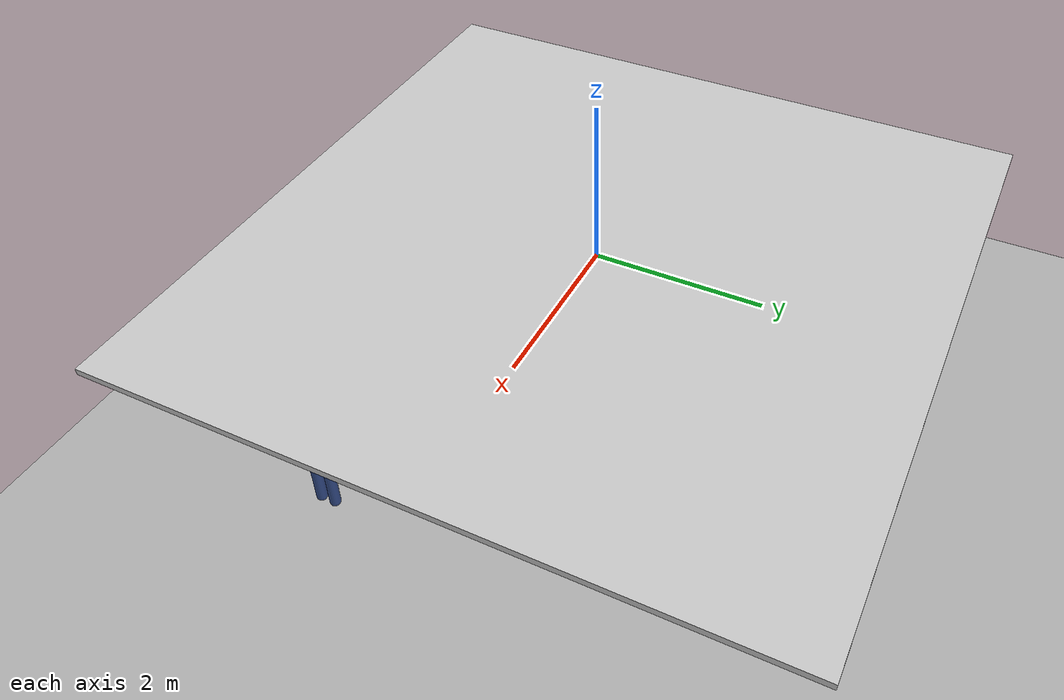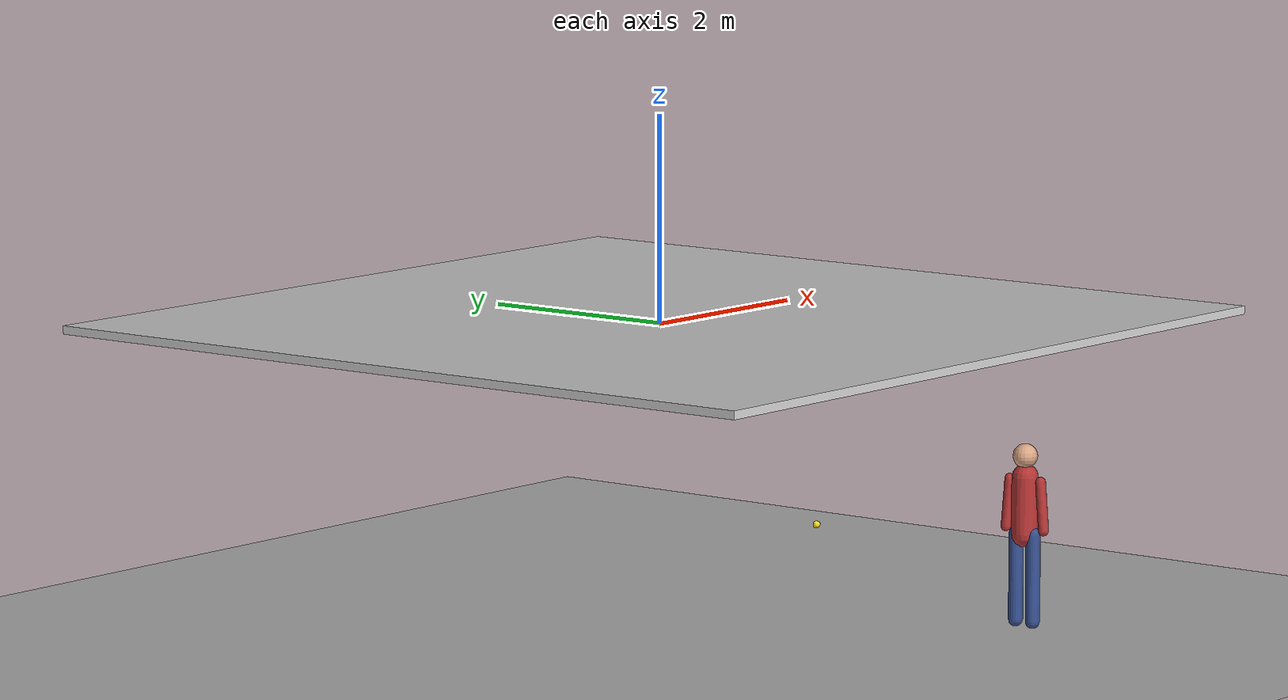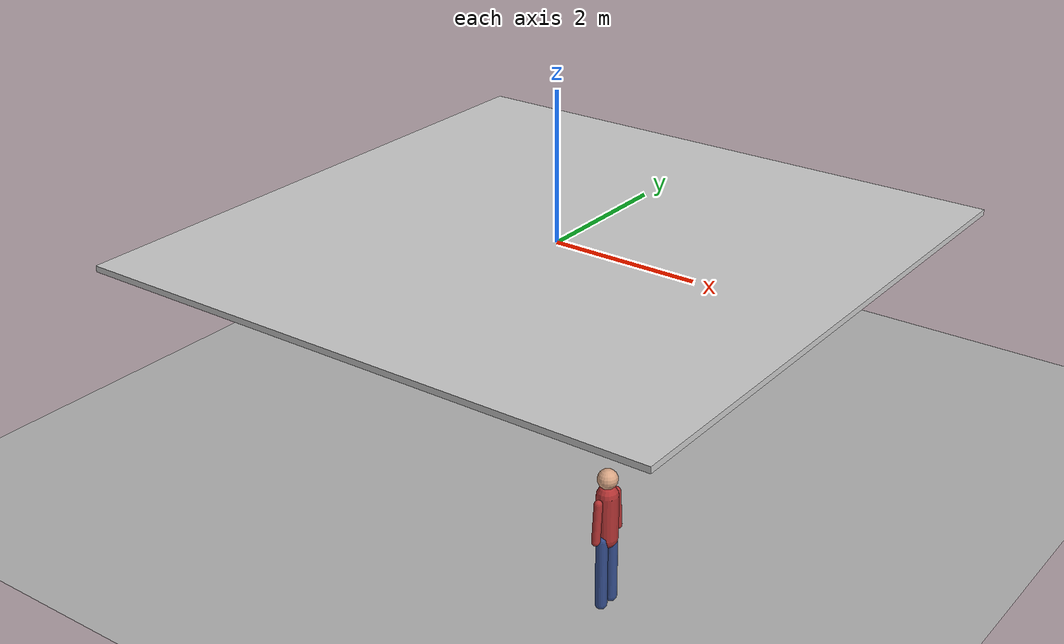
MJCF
<mujoco model="chameleon">

    <compiler angle="degree" coordinate="local" inertiafromgeom="auto"/>
    <!--Gravity no longer goes the wrong way, we will need a transformation matrix to integrate with group -->
    <option gravity="0 0 -9.81" timestep="0.002" integrator="RK4"/>
    <size njmax="200" nconmax="100"/>

    <visual>
        <!--Change this if the camera light is too bright-->
        <headlight diffuse="0.7 0.7 0.7" ambient="0.6 0.6 0.6" specular="0.3 0.3 0.3"/>
        <map znear="0.02"/>
        <quality shadowsize="2048"/>
    </visual>

    <asset>
        <!--Stuff for the floor-->
        <texture name="grid_tex" type="2d" builtin="checker" rgb1="0.8 0.8 0.8" rgb2="0.6 0.6 0.6" width="512" height="512"/>
        <material name="grid_mat" texture="grid_tex" texrepeat="20 20" reflectance="0.1" rgba="1 1 1 1"/>
        <texture name="sky" type="skybox" builtin="gradient" rgb1="0.4 0.65 0.9" rgb2="0.9 0.95 1.0" width="256" height="256"/>
    </asset>

    <worldbody>
        <camera name="default_view" pos="-0.182 -8.326 0.000" xyaxes="1.000 -0.022 0.000 -0.000 -0.000 1.000"/>
        <!--General Setup, ceiling and floor 3 meters apart, as will be established in report, also make it daylight-->
        <light name="sun" directional="true" castshadow="true" pos="0 0 10" dir="0.5 0.5 1" diffuse="0.95 0.95 0.9" specular="0.3 0.3 0.3"/>
        <geom name="floor" type="plane" pos="0 0 -3" size="8 8 0.1" material="grid_mat"/>
        <geom name="ceiling" type="box" pos="0 0 0.04" size="4 4 0.04" rgba="0.8 0.8 0.8 1"/>

        <!--Ceiling Dock and Active Tension Spool-->

        <!--Will be free to turn horizontally and also like a spool, so problem stays 2D-->
        <body name="dock" pos="0 0 -0.025">

        <!--FIX VALUES when we have found one online or made one in CATIA-->
            <geom name="dock_geom" type="box" size="0.07 0.07 0.025" rgba="0.45 0.45 0.50 1" mass="2.0"/>

            <!--FIX VALUES here as well for size mass-->
            <body name="swivel_bracket" pos="0 0 -0.045">

            <!--CHECK HERE: armature adds inertia, should prevent numerical instability, have a look whether its physically correct though-->
            <!--Basically we need to back up damping and armature values-->
                <joint name="swivel_yaw" type="hinge" axis="0 0 1" damping="0.02" armature="0.01"/>
                <geom name="bracket_geom" type="box" size="0.03 0.03 0.02" rgba="0.85 0.20 0.20 1" mass="0.15"/>

                <!--FIX VALUES here as well for size mass-->
                <!--8 mm offset for spool drum-->
                <body name="spool_drum" pos="0 0 -0.06">
                    <joint name="spool_roll" type="hinge" axis="0 1 0" damping="0.02" armature="0.01"/>
                    <geom name="drum_geom" type="cylinder" size="0.032 0.022" euler="90 0 0" rgba="0.20 0.80 0.35 1" mass="0.30"/>

                    <geom name="drum_mark" type="box" pos="0.030 0 0" size="0.005 0.023 0.004" euler="90 0 0" rgba="0.95 0.95 0.10 1" mass="0.001"/>
                </body>
                <!-- Tether anchor: visually at point where tether leaves spool, but attached in simulation to bracket, so it does not turn around y with spool -->
                    <site name="tether_anchor" pos="0.032 0 -0.06" size="0.005" rgba="1 1 0 1"/>
            </body>
        </body>

        <!--Chameleon Drone-->
        <!--Right now it starts right below the dock, reconsider this when we know docking infra-->
        <body name="drone" pos="0 0 -0.25">
            <freejoint name="drone_free"/>
            <!--UPDATE THIS ENTIRE PART WHEN SIZING IS IN-->
            <!--Hollow-Cylinder Inertia (m=0.143, R= 0.0405, r=0.029, h=0.08)-->
            <inertial pos="0 0 0" mass="0.160" diaginertia="0.000116419 0.000121242 0.000128358"/>
            <!--Duct Wall-->
            <geom name="duct_geom" type="cylinder" size="0.0405 0.04" euler="0 90 0" rgba="0.20 0.50 0.85 1"/>
            <!--Counter-Rotating propeller disc, only for visual, deleted if we have CAD model-->
            <geom name="prop_geom" type="cylinder" size="0.036 0.004" pos="0.01 0 0" euler="0 90 0" rgba="0.15 0.15 0.18 1" mass="0.0" contype="0" conaffinity="0"/>
             <!-- Thrust-vectoring vanes below the duct-->
            <geom name="vane_x" type="box" size="0.012 0.003 0.036" pos="-0.045 0 0" rgba="1.0 0.55 0.05 1" mass="0.0" contype="0" conaffinity="0"/>
            <geom name="vane_y" type="box" size="0.012 0.036 0.003" pos="-0.045 0 0" rgba="1.0 0.55 0.05 1" mass="0.0" contype="0" conaffinity="0"/>
            <!-- Red nose stripe so we see how it turns-->
            <geom name="nose" type="box" size="0.04 0.006 0.002" pos="0 0 0.040" rgba="0.95 0.10 0.10 1" mass="0.0" contype="0" conaffinity="0"/>
            <!-- Top cap-->
            <geom name="top_cap" type="cylinder" size="0.042 0.003" pos="0.043 0 0" euler="0 90 0" rgba="0.95 0.95 0.95 1" mass="0.0" contype="0" conaffinity="0"/>
            <!-- Tether attaches near thrust vanes for now -->
            <site name="drone_mount" pos="-0.04 0 0" size="0.006" rgba="1.0 0.3 0.0 1"/>
            <site name="imu" pos="0 0 0" size="0.004" rgba="0 0 0 0"/>
        </body>

        <!--Moth (does nothing but nice for our simulation (if it works :))-->
        <body name="moth" mocap="true" pos="1.334 -0.87 -2.029">
            <geom name="moth_geom" type="sphere" size="0.035" rgba="0.95 0.85 0.15 1" contype="0" conaffinity="0"/>
        </body>

        <!--Human silhouette (~1.8 m) for scale only: welded to world, no mass, no collision-->
        <body name="human_scale" pos="2.5 -2.5 -3">
            <!--Legs-->
            <geom name="h_leg_l" type="capsule" fromto="0  0.10 0.05 0  0.10 0.90" size="0.07" rgba="0.20 0.30 0.55 1" mass="0" contype="0" conaffinity="0"/>
            <geom name="h_leg_r" type="capsule" fromto="0 -0.10 0.05 0 -0.10 0.90" size="0.07" rgba="0.20 0.30 0.55 1" mass="0" contype="0" conaffinity="0"/>
            <!--Torso-->
            <geom name="h_torso" type="capsule" fromto="0 0 0.90 0 0 1.45" size="0.13" rgba="0.70 0.20 0.20 1" mass="0" contype="0" conaffinity="0"/>
            <!--Arms-->
            <geom name="h_arm_l" type="capsule" fromto="0  0.18 1.42 0  0.22 0.95" size="0.05" rgba="0.70 0.20 0.20 1" mass="0" contype="0" conaffinity="0"/>
            <geom name="h_arm_r" type="capsule" fromto="0 -0.18 1.42 0 -0.22 0.95" size="0.05" rgba="0.70 0.20 0.20 1" mass="0" contype="0" conaffinity="0"/>
            <!--Neck + head (head top ~1.78 m)-->
            <geom name="h_neck" type="capsule" fromto="0 0 1.45 0 0 1.55" size="0.04" rgba="0.85 0.65 0.52 1" mass="0" contype="0" conaffinity="0"/>
            <geom name="h_head" type="sphere" pos="0 0 1.66" size="0.12" rgba="0.85 0.65 0.52 1" mass="0" contype="0" conaffinity="0"/>
        </body>
    </worldbody>

    <!--Tether, negative values are such that we bypass time constant-->
    <!--K and B need UPDATE-->
    <tendon>
        <spatial name="tether" width="0.0022" rgba="0.95 0.95 0.88 1" limited="true" range="0 15" solreflimit="-5000 -15" solimplimit="0.95 0.99 0.001">
            <site site="tether_anchor"/>
            <site site="drone_mount"/>
        </spatial>
    </tendon>

    <!--Here the motor for active spooling and reeling, and also the brakes in this block-->
    <!--UPDATE WITH REAL MOTOR VALUES-->
    <actuator>
        <motor name="reel_motor" joint="spool_roll" gear="1" ctrlrange="-10 10"/>
        <damper name="friction_brake" joint="spool_roll" kv="5" ctrlrange="0 5"/>
    </actuator>

    <!--Sensors which are necessary for the python code-->
    <sensor>
        <jointpos      name="spool_angle" joint="spool_roll"/>
        <jointvel      name="spool_omega" joint="spool_roll"/>
        <accelerometer name="drone_acc"   site="imu"/>
        <force         name="mount_force" site="drone_mount"/>
    </sensor>

</mujoco>
